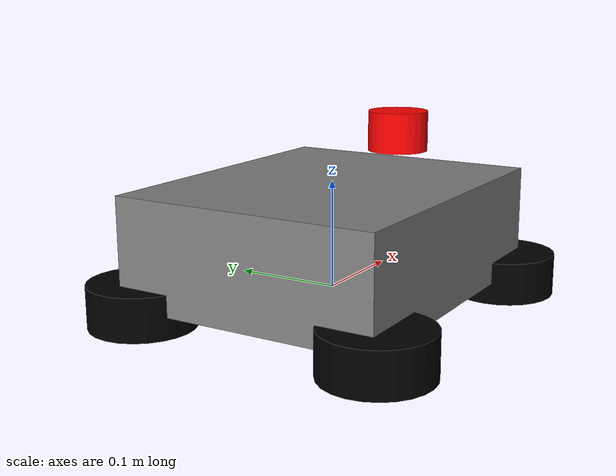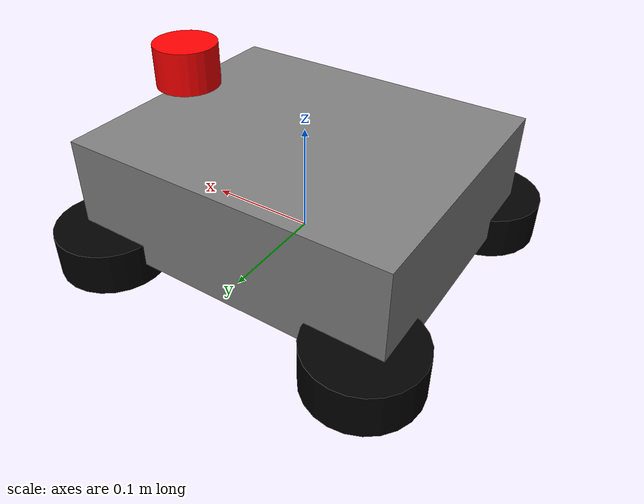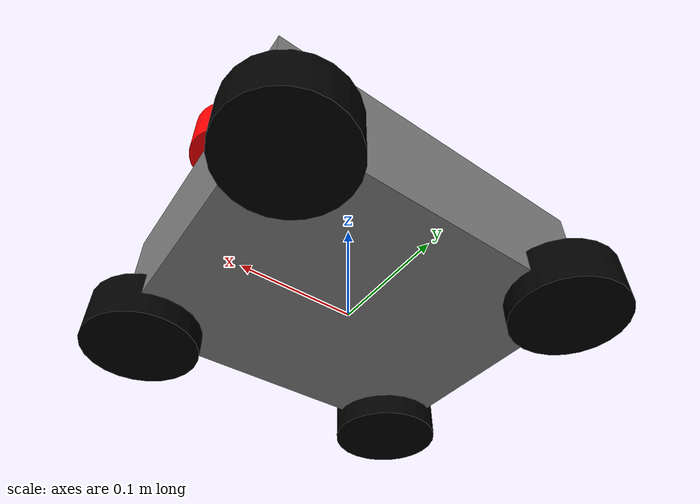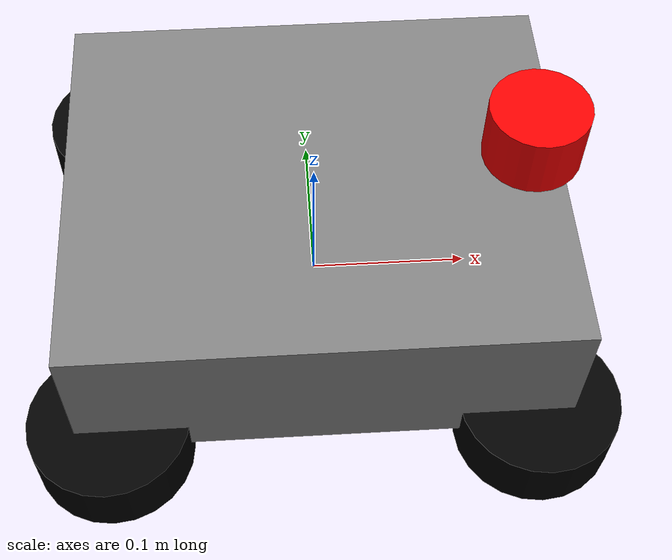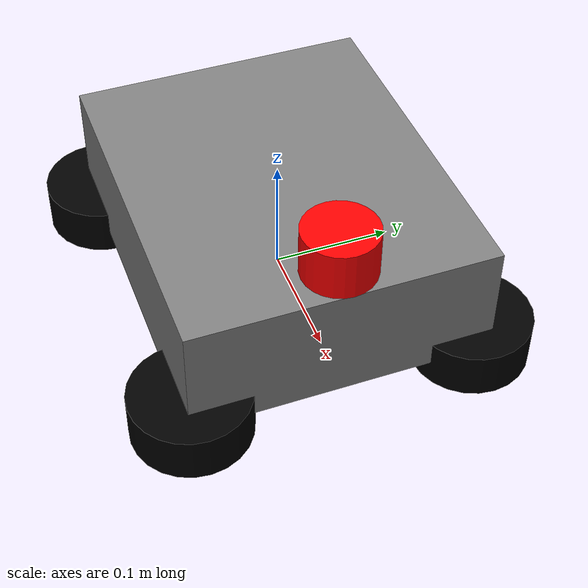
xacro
<?xml version="1.0"?>
<robot xmlns:xacro="http://www.ros.org/wiki/xacro" name="ackermann_robot">

  <!-- === Includes === -->
  <xacro:include filename="properties.xacro"/>  <!-- ✅ Incluye colores -->

  <!-- === Parámetros del vehículo === -->
  <xacro:property name="wheelbase" value="0.26"/>         <!-- Distancia entre ejes -->
  <xacro:property name="front_track" value="0.235"/>      <!-- Ancho del eje delantero -->
  <xacro:property name="rear_track" value="0.235"/>       <!-- Ancho del eje trasero -->
  <xacro:property name="wheel_radius" value="0.049"/>     <!-- Radio de rueda -->
  <xacro:property name="wheel_width" value="0.04"/>       <!-- Ancho de rueda -->
  <xacro:property name="chassis_height" value="0.05"/>    <!-- Altura del chasis -->

  <!-- === FRAME PRINCIPAL: odom -> base_link2 === -->
  <link name="odom2"/>
  <link name="base_link2"/>

  <joint name="odom_to_base_link" type="fixed">
    <parent link="odom2"/>
    <child link="base_link2"/>
    <origin xyz="0 0 0" rpy="0 0 0"/>
  </joint>

  <!-- === base_link2 -> base_footprint === -->
  <link name="base_footprint"/>
  <joint name="base_footprint_joint" type="fixed">
    <parent link="base_link2"/>
    <child link="base_footprint"/>
    <origin xyz="0 0 0" rpy="0 0 0"/>
  </joint>

  <!-- === Chasis === -->
  <link name="chassis">
    <visual>
      <origin xyz="0 0 ${chassis_height}"/>
      <geometry>
        <box size="0.30 0.25 0.10"/>
      </geometry>
      <material name="gray"/>  <!-- color importado -->
    </visual>
    <collision>
      <origin xyz="0 0 ${chassis_height}"/>
      <geometry>
        <box size="0.30 0.25 0.10"/>
      </geometry>
    </collision>
  </link>

  <joint name="base_to_chassis" type="fixed">
    <parent link="base_link2"/>
    <child link="chassis"/>
    <origin xyz="0 0 0" rpy="0 0 0"/>
  </joint>

  <!-- === RUEDAS DELANTERAS (con dirección) === -->

  <!-- Front Left -->
  <joint name="fl_steer_joint" type="continuous">
    <parent link="chassis"/>
    <child link="front_left_steer_link"/>
    <origin xyz="${wheelbase/2} ${front_track/2} 0"/>
    <axis xyz="0 0 1"/>
  </joint>

  <link name="front_left_steer_link"/>

  <joint name="fl_wheel_joint" type="continuous">
    <parent link="front_left_steer_link"/>
    <child link="front_left_wheel"/>
    <origin xyz="0 0 0"/>
    <axis xyz="0 1 0"/>
  </joint>

  <link name="front_left_wheel">
    <visual>
      <geometry>
        <cylinder radius="${wheel_radius}" length="${wheel_width}"/>
      </geometry>
      <origin xyz="0 0 0" rpy="0 0 0"/>
      <material name="black"/>  <!-- color importado -->
    </visual>
    <collision>
      <geometry>
        <cylinder radius="${wheel_radius}" length="${wheel_width}"/>
      </geometry>
    </collision>
  </link>

  <!-- Front Right -->
  <joint name="fr_steer_joint" type="continuous">
    <parent link="chassis"/>
    <child link="front_right_steer_link"/>
    <origin xyz="${wheelbase/2} -${front_track/2} 0"/>
    <axis xyz="0 0 1"/>
  </joint>

  <link name="front_right_steer_link"/>

  <joint name="fr_wheel_joint" type="continuous">
    <parent link="front_right_steer_link"/>
    <child link="front_right_wheel"/>
    <origin xyz="0 0 0"/>
    <axis xyz="0 1 0"/>
  </joint>

  <link name="front_right_wheel">
    <visual>
      <geometry>
        <cylinder radius="${wheel_radius}" length="${wheel_width}"/>
      </geometry>
      <origin xyz="0 0 0" rpy="0 0 0"/>
      <material name="black"/>
    </visual>
    <collision>
      <geometry>
        <cylinder radius="${wheel_radius}" length="${wheel_width}"/>
      </geometry>
    </collision>
  </link>

  <!-- === RUEDAS TRASERAS === -->

  <!-- Rear Left -->
  <joint name="rl_wheel_joint" type="continuous">
    <parent link="chassis"/>
    <child link="rear_left_wheel"/>
    <origin xyz="-${wheelbase/2} ${rear_track/2} 0"/>
    <axis xyz="0 1 0"/>
  </joint>

  <link name="rear_left_wheel">
    <visual>
      <geometry>
        <cylinder radius="${wheel_radius}" length="${wheel_width}"/>
      </geometry>
      <origin xyz="0 0 0" rpy="0 0 0"/>
      <material name="black"/>
    </visual>
    <collision>
      <geometry>
        <cylinder radius="${wheel_radius}" length="${wheel_width}"/>
      </geometry>
    </collision>
  </link>

  <!-- Rear Right -->
  <joint name="rr_wheel_joint" type="continuous">
    <parent link="chassis"/>
    <child link="rear_right_wheel"/>
    <origin xyz="-${wheelbase/2} -${rear_track/2} 0"/>
    <axis xyz="0 1 0"/>
  </joint>

  <link name="rear_right_wheel">
    <visual>
      <geometry>
        <cylinder radius="${wheel_radius}" length="${wheel_width}"/>
      </geometry>
      <origin xyz="0 0 0" rpy="0 0 0"/>
      <material name="black"/>
    </visual>
    <collision>
      <geometry>
        <cylinder radius="${wheel_radius}" length="${wheel_width}"/>
      </geometry>
    </collision>
  </link>

  <!-- === SENSORES === -->

  <!-- LIDAR -->
  <link name="laser_frame">
    <visual>
      <origin xyz="0 0 0"/>
      <geometry>
        <cylinder radius="0.03" length="0.04"/>
      </geometry>
      <material name="red"/>
    </visual>
    <collision>
      <geometry>
        <cylinder radius="0.03" length="0.04"/>
      </geometry>
    </collision>
  </link>

  <joint name="laser_joint" type="fixed">
    <parent link="base_link2"/>
    <child link="laser_frame"/>
    <origin xyz="0.13 0.0 0.13" rpy="0 0 ${pi}"/>
  </joint>

  <!-- IMU -->
  <link name="imu_link">
    <visual>
      <origin xyz="0 0 0"/>
      <geometry>
        <box size="0.03 0.03 0.02"/>
      </geometry>
      <material name="blue"/>
    </visual>
  </link>

  <joint name="imu_joint" type="fixed">
    <parent link="base_link2"/>
    <child link="imu_link"/>
    <origin xyz="-0.02 0.0 0.02" rpy="0 ${pi} ${pi/2}"/>
  </joint>

</robot>

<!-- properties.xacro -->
<robot xmlns:xacro="http://www.ros.org/wiki/xacro">

  <!-- ===== 🎨 Definición de materiales ===== -->
  <material name="white">
    <color rgba="1 1 1 1"/>
  </material>

  <material name="orange">
    <color rgba="1 0.3 0.1 1"/>
  </material>

  <material name="blue">
    <color rgba="0.2 0.2 1 1"/>
  </material>

  <material name="black">
    <color rgba="0 0 0 1"/>
  </material>

  <material name="red">
    <color rgba="1 0 0 1"/>
  </material>

  <material name="gray">
    <color rgba="0.5 0.5 0.5 1"/>
  </material>

</robot>
